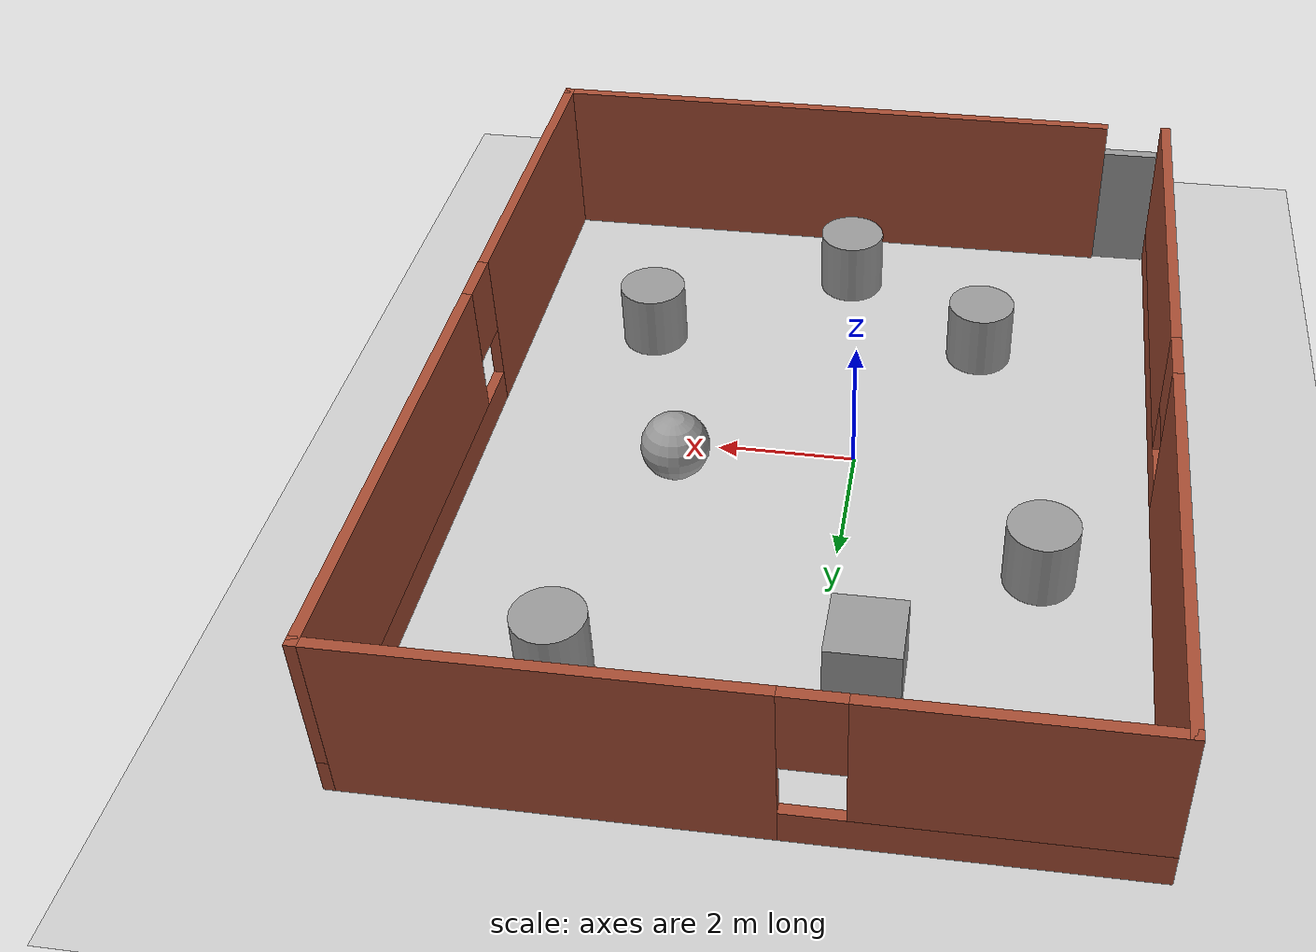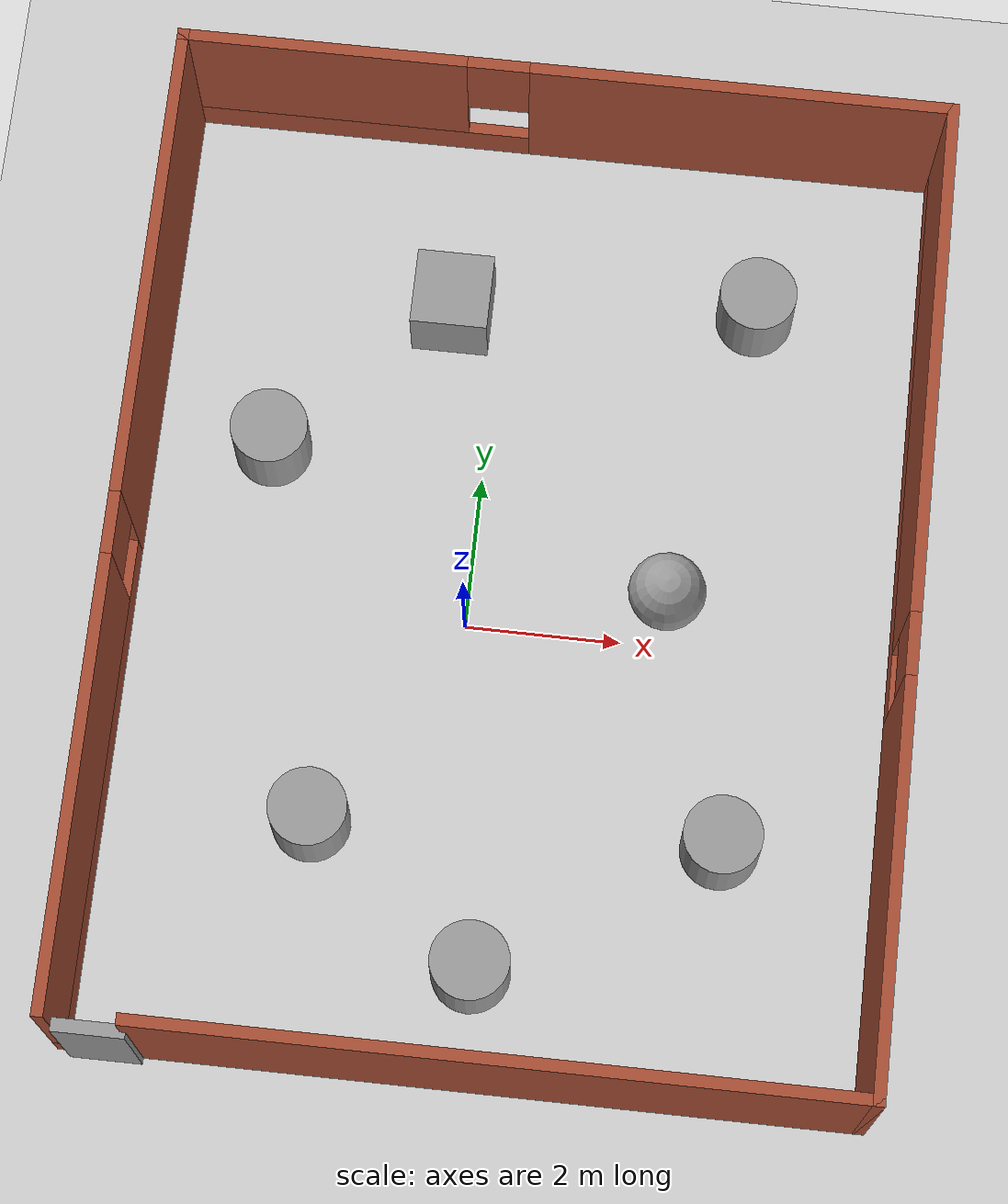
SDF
<sdf version="1.7">
 <world name="default">
  <light name="sun" type="directional">
   <pose>0 0 10 0 -0 0</pose>
   <diffuse>0.8 0.8 0.8 1</diffuse>
   <specular>0.2 0.2 0.2 1</specular>
   <attenuation>
    <range>1000</range>
    <constant>0.9</constant>
    <linear>0.01</linear>
    <quadratic>0.001</quadratic>
   </attenuation>
   <direction>-0.5 0.1 -0.9</direction>
   <spot><inner_angle>0</inner_angle><outer_angle>0</outer_angle><falloff>0</falloff></spot>
  </light>
  <model name="ground_plane">
   <static>1</static>
   <link name="link">
    <collision name="collision">
     <geometry><plane><normal>0 0 1</normal><size>100 100</size></plane></geometry>
     <surface>
      <contact><collide_bitmask>65535</collide_bitmask></contact>
      <friction><ode><mu>100</mu><mu2>50</mu2></ode></friction>
     </surface>
    </collision>
    <visual name="visual">
     <cast_shadows>0</cast_shadows>
     <geometry><plane><normal>0 0 1</normal><size>100 100</size></plane></geometry>
     <material>
      <script><uri>file://media/materials/scripts/gazebo.material</uri><name>Gazebo/Grey</name></script>
     </material>
    </visual>
   </link>
  </model>
  <gravity>0 0 -9.8</gravity>
  <magnetic_field>6e-06 2.3e-05 -4.2e-05</magnetic_field>
  <atmosphere type="adiabatic"/>
  <physics type="ode">
   <max_step_size>0.001</max_step_size>
   <real_time_factor>1</real_time_factor>
   <real_time_update_rate>1000</real_time_update_rate>
  </physics>
  <scene><ambient>0.4 0.4 0.4 1</ambient><background>0.7 0.7 0.7 1</background><shadows>1</shadows></scene>
  <spherical_coordinates>
   <surface_model>EARTH_WGS84</surface_model>
   <latitude_deg>0</latitude_deg>
   <longitude_deg>0</longitude_deg>
   <elevation>0</elevation>
   <heading_deg>0</heading_deg>
  </spherical_coordinates>
  <model name="first_building">
   <pose>0.582935 0.444911 0 0 -0 0</pose>
   <link name="Door_0">
    <collision name="Door_0_Collision">
     <geometry><box><size>0.9 0.17 2</size></box></geometry>
     <pose>0 0 1 0 -0 0</pose>
    </collision>
    <visual name="Door_0_Visual">
     <pose>0 0 1 0 -0 0</pose>
     <geometry><box><size>0.9 0.17 2</size></box></geometry>
     <material>
      <script><uri>file://media/materials/scripts/gazebo.material</uri><name>Gazebo/Grey</name></script>
     </material>
    </visual>
    <pose>-4.38127 -6.36871 0 0 -0 0</pose>
   </link>
   <link name="Wall_11">
    <collision name="Wall_11_Collision">
     <geometry><box><size>9 0.15 2.5</size></box></geometry>
     <pose>0 0 1.25 0 -0 0</pose>
    </collision>
    <visual name="Wall_11_Visual">
     <pose>0 0 1.25 0 -0 0</pose>
     <geometry><box><size>9 0.15 2.5</size></box></geometry>
     <material>
      <script><uri>file://media/materials/scripts/gazebo.material</uri><name>Gazebo/Bricks</name></script>
      <ambient>1 1 1 1</ambient>
     </material>
     <meta><layer>0</layer></meta>
    </visual>
    <pose>0.5 -6.3 0 0 -0 0</pose>
   </link>
   <link name="Wall_12">
    <pose>4.925 0 0 0 -0 1.5708</pose>
    <visual name="Wall_12_Visual_0">
     <pose>-3.77234 0 1.25 0 -0 0</pose>
     <geometry><box><size>5.20532 0.15 2.5</size></box></geometry>
     <material>
      <script><uri>file://media/materials/scripts/gazebo.material</uri><name>Gazebo/Bricks</name></script>
      <ambient>1 1 1 1</ambient>
     </material>
     <meta><layer>0</layer></meta>
    </visual>
    <collision name="Wall_12_Collision_0">
     <geometry><box><size>5.20532 0.15 2.5</size></box></geometry>
     <pose>-3.77234 0 1.25 0 -0 0</pose>
    </collision>
    <visual name="Wall_12_Visual_1">
     <pose>2.60266 0 0.25 0 -0 0</pose>
     <geometry><box><size>7.54468 0.15 0.5</size></box></geometry>
     <material>
      <script><uri>file://media/materials/scripts/gazebo.material</uri><name>Gazebo/Bricks</name></script>
      <ambient>1 1 1 1</ambient>
     </material>
     <meta><layer>0</layer></meta>
    </visual>
    <collision name="Wall_12_Collision_1">
     <geometry><box><size>7.54468 0.15 0.5</size></box></geometry>
     <pose>2.60266 0 0.25 0 -0 0</pose>
    </collision>
    <visual name="Wall_12_Visual_2">
     <pose>3.00266 0 1.5 0 -0 0</pose>
     <geometry><box><size>6.74468 0.15 2</size></box></geometry>
     <material>
      <script><uri>file://media/materials/scripts/gazebo.material</uri><name>Gazebo/Bricks</name></script>
      <ambient>1 1 1 1</ambient>
     </material>
     <meta><layer>0</layer></meta>
    </visual>
    <collision name="Wall_12_Collision_2">
     <geometry><box><size>6.74468 0.15 2</size></box></geometry>
     <pose>3.00266 0 1.5 0 -0 0</pose>
    </collision>
    <visual name="Wall_12_Visual_3">
     <pose>-0.769679 0 1.9 0 -0 0</pose>
     <geometry><box><size>0.8 0.15 1.2</size></box></geometry>
     <material>
      <script><uri>file://media/materials/scripts/gazebo.material</uri><name>Gazebo/Bricks</name></script>
      <ambient>1 1 1 1</ambient>
     </material>
     <meta><layer>0</layer></meta>
    </visual>
    <collision name="Wall_12_Collision_3">
     <geometry><box><size>0.8 0.15 1.2</size></box></geometry>
     <pose>-0.769679 0 1.9 0 -0 0</pose>
    </collision>
   </link>
   <link name="Wall_14">
    <pose>0 6.3 0 0 -0 3.14159</pose>
    <visual name="Wall_14_Visual_0">
     <pose>-2.26291 0 1.25 0 -0 0</pose>
     <geometry><box><size>5.47418 0.15 2.5</size></box></geometry>
     <material>
      <script><uri>file://media/materials/scripts/gazebo.material</uri><name>Gazebo/Bricks</name></script>
      <ambient>1 1 1 1</ambient>
     </material>
     <meta><layer>0</layer></meta>
    </visual>
    <collision name="Wall_14_Collision_0">
     <geometry><box><size>5.47418 0.15 2.5</size></box></geometry>
     <pose>-2.26291 0 1.25 0 -0 0</pose>
    </collision>
    <visual name="Wall_14_Visual_1">
     <pose>2.73709 0 0.25 0 -0 0</pose>
     <geometry><box><size>4.52582 0.15 0.5</size></box></geometry>
     <material>
      <script><uri>file://media/materials/scripts/gazebo.material</uri><name>Gazebo/Bricks</name></script>
      <ambient>1 1 1 1</ambient>
     </material>
     <meta><layer>0</layer></meta>
    </visual>
    <collision name="Wall_14_Collision_1">
     <geometry><box><size>4.52582 0.15 0.5</size></box></geometry>
     <pose>2.73709 0 0.25 0 -0 0</pose>
    </collision>
    <visual name="Wall_14_Visual_2">
     <pose>3.13709 0 1.5 0 -0 0</pose>
     <geometry><box><size>3.72582 0.15 2</size></box></geometry>
     <material>
      <script><uri>file://media/materials/scripts/gazebo.material</uri><name>Gazebo/Bricks</name></script>
      <ambient>1 1 1 1</ambient>
     </material>
     <meta><layer>0</layer></meta>
    </visual>
    <collision name="Wall_14_Collision_2">
     <geometry><box><size>3.72582 0.15 2</size></box></geometry>
     <pose>3.13709 0 1.5 0 -0 0</pose>
    </collision>
    <visual name="Wall_14_Visual_3">
     <pose>0.874181 0 1.9 0 -0 0</pose>
     <geometry><box><size>0.8 0.15 1.2</size></box></geometry>
     <material>
      <script><uri>file://media/materials/scripts/gazebo.material</uri><name>Gazebo/Bricks</name></script>
      <ambient>1 1 1 1</ambient>
     </material>
     <meta><layer>0</layer></meta>
    </visual>
    <collision name="Wall_14_Collision_3">
     <geometry><box><size>0.8 0.15 1.2</size></box></geometry>
     <pose>0.874181 0 1.9 0 -0 0</pose>
    </collision>
   </link>
   <link name="Wall_15">
    <pose>-4.925 0 0 0 -0 -1.5708</pose>
    <visual name="Wall_15_Visual_0">
     <pose>-3.24877 0 1.25 0 -0 0</pose>
     <geometry><box><size>6.25246 0.15 2.5</size></box></geometry>
     <material>
      <script><uri>file://media/materials/scripts/gazebo.material</uri><name>Gazebo/Bricks</name></script>
      <ambient>1 1 1 1</ambient>
     </material>
     <meta><layer>0</layer></meta>
    </visual>
    <collision name="Wall_15_Collision_0">
     <geometry><box><size>6.25246 0.15 2.5</size></box></geometry>
     <pose>-3.24877 0 1.25 0 -0 0</pose>
    </collision>
    <visual name="Wall_15_Visual_1">
     <pose>3.12623 0 0.25 0 -0 0</pose>
     <geometry><box><size>6.49754 0.15 0.5</size></box></geometry>
     <material>
      <script><uri>file://media/materials/scripts/gazebo.material</uri><name>Gazebo/Bricks</name></script>
      <ambient>1 1 1 1</ambient>
     </material>
     <meta><layer>0</layer></meta>
    </visual>
    <collision name="Wall_15_Collision_1">
     <geometry><box><size>6.49754 0.15 0.5</size></box></geometry>
     <pose>3.12623 0 0.25 0 -0 0</pose>
    </collision>
    <visual name="Wall_15_Visual_2">
     <pose>3.52623 0 1.5 0 -0 0</pose>
     <geometry><box><size>5.69754 0.15 2</size></box></geometry>
     <material>
      <script><uri>file://media/materials/scripts/gazebo.material</uri><name>Gazebo/Bricks</name></script>
      <ambient>1 1 1 1</ambient>
     </material>
     <meta><layer>0</layer></meta>
    </visual>
    <collision name="Wall_15_Collision_2">
     <geometry><box><size>5.69754 0.15 2</size></box></geometry>
     <pose>3.52623 0 1.5 0 -0 0</pose>
    </collision>
    <visual name="Wall_15_Visual_3">
     <pose>0.277456 0 1.9 0 -0 0</pose>
     <geometry><box><size>0.8 0.15 1.2</size></box></geometry>
     <material>
      <script><uri>file://media/materials/scripts/gazebo.material</uri><name>Gazebo/Bricks</name></script>
      <ambient>1 1 1 1</ambient>
     </material>
     <meta><layer>0</layer></meta>
    </visual>
    <collision name="Wall_15_Collision_3">
     <geometry><box><size>0.8 0.15 1.2</size></box></geometry>
     <pose>0.277456 0 1.9 0 -0 0</pose>
    </collision>
   </link>
   <static>1</static>
  </model>
  <model name="unit_cylinder">
   <pose>-1.64948 -2.76582 0.499992 -3e-06 4e-06 0</pose>
   <link name="link">
    <inertial>
     <mass>1</mass>
     <inertia><ixx>0.145833</ixx><ixy>0</ixy><ixz>0</ixz><iyy>0.145833</iyy><iyz>0</iyz><izz>0.125</izz></inertia>
    </inertial>
    <collision name="collision">
     <geometry><cylinder><radius>0.5</radius><length>1</length></cylinder></geometry>
    </collision>
    <visual name="visual">
     <geometry><cylinder><radius>0.5</radius><length>1</length></cylinder></geometry>
     <material>
      <script><name>Gazebo/Grey</name><uri>file://media/materials/scripts/gazebo.material</uri></script>
     </material>
    </visual>
   </link>
  </model>
  <model name="unit_cylinder_0">
   <pose>3.3197 4.59051 0.499998 3e-06 -4e-06 0</pose>
   <link name="link">
    <inertial>
     <mass>1</mass>
     <inertia><ixx>0.145833</ixx><ixy>0</ixy><ixz>0</ixz><iyy>0.145833</iyy><iyz>0</iyz><izz>0.125</izz></inertia>
    </inertial>
    <collision name="collision">
     <geometry><cylinder><radius>0.5</radius><length>1</length></cylinder></geometry>
    </collision>
    <visual name="visual">
     <geometry><cylinder><radius>0.5</radius><length>1</length></cylinder></geometry>
     <material>
      <script><name>Gazebo/Grey</name><uri>file://media/materials/scripts/gazebo.material</uri></script>
     </material>
    </visual>
   </link>
  </model>
  <model name="unit_cylinder_1">
   <pose>3.49367 -2.577 0.499992 -3e-06 -4e-06 -0</pose>
   <link name="link">
    <inertial>
     <mass>1</mass>
     <inertia><ixx>0.145833</ixx><ixy>0</ixy><ixz>0</ixz><iyy>0.145833</iyy><iyz>0</iyz><izz>0.125</izz></inertia>
    </inertial>
    <collision name="collision">
     <geometry><cylinder><radius>0.5</radius><length>1</length></cylinder></geometry>
    </collision>
    <visual name="visual">
     <geometry><cylinder><radius>0.5</radius><length>1</length></cylinder></geometry>
     <material>
      <script><name>Gazebo/Grey</name><uri>file://media/materials/scripts/gazebo.material</uri></script>
     </material>
    </visual>
   </link>
  </model>
  <model name="unit_box">
   <pose>-0.629282 4.2378 0.499995 -1e-05 -0 -0</pose>
   <link name="link">
    <inertial>
     <mass>1</mass>
     <inertia>
      <ixx>0.166667</ixx>
      <ixy>0</ixy>
      <ixz>0</ixz>
      <iyy>0.166667</iyy>
      <iyz>0</iyz>
      <izz>0.166667</izz>
     </inertia>
    </inertial>
    <collision name="collision"><geometry><box><size>1 1 1</size></box></geometry></collision>
    <visual name="visual">
     <geometry><box><size>1 1 1</size></box></geometry>
     <material>
      <script><name>Gazebo/Grey</name><uri>file://media/materials/scripts/gazebo.material</uri></script>
     </material>
    </visual>
   </link>
  </model>
  <model name="unit_sphere">
   <pose>2.52373 0.605692 0.5 0 -0 0</pose>
   <link name="link">
    <inertial>
     <mass>1</mass>
     <inertia><ixx>0.1</ixx><ixy>0</ixy><ixz>0</ixz><iyy>0.1</iyy><iyz>0</iyz><izz>0.1</izz></inertia>
    </inertial>
    <collision name="collision"><geometry><sphere><radius>0.5</radius></sphere></geometry></collision>
    <visual name="visual">
     <geometry><sphere><radius>0.5</radius></sphere></geometry>
     <material>
      <script><name>Gazebo/Grey</name><uri>file://media/materials/scripts/gazebo.material</uri></script>
     </material>
    </visual>
   </link>
  </model>
  <model name="unit_cylinder_2">
   <pose>0.557748 -4.45994 0.499993 -3e-06 -4e-06 -0</pose>
   <link name="link">
    <inertial>
     <mass>1</mass>
     <inertia><ixx>0.145833</ixx><ixy>0</ixy><ixz>0</ixz><iyy>0.145833</iyy><iyz>0</iyz><izz>0.125</izz></inertia>
    </inertial>
    <collision name="collision">
     <geometry><cylinder><radius>0.5</radius><length>1</length></cylinder></geometry>
    </collision>
    <visual name="visual">
     <geometry><cylinder><radius>0.5</radius><length>1</length></cylinder></geometry>
     <material>
      <script><name>Gazebo/Grey</name><uri>file://media/materials/scripts/gazebo.material</uri></script>
     </material>
    </visual>
   </link>
  </model>
  <model name="unit_cylinder_3">
   <pose>-2.75366 2.12691 0.499997 3e-06 4e-06 -0</pose>
   <link name="link">
    <inertial>
     <mass>1</mass>
     <inertia><ixx>0.145833</ixx><ixy>0</ixy><ixz>0</ixz><iyy>0.145833</iyy><iyz>0</iyz><izz>0.125</izz></inertia>
    </inertial>
    <collision name="collision">
     <geometry><cylinder><radius>0.5</radius><length>1</length></cylinder></geometry>
    </collision>
    <visual name="visual">
     <geometry><cylinder><radius>0.5</radius><length>1</length></cylinder></geometry>
     <material>
      <script><name>Gazebo/Grey</name><uri>file://media/materials/scripts/gazebo.material</uri></script>
     </material>
    </visual>
   </link>
  </model>
 </world>
</sdf>
